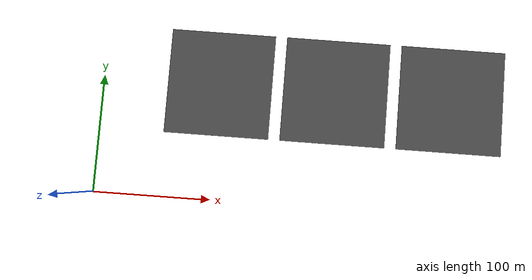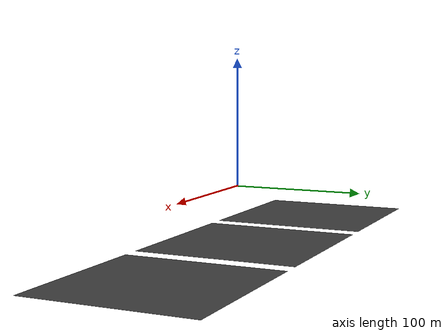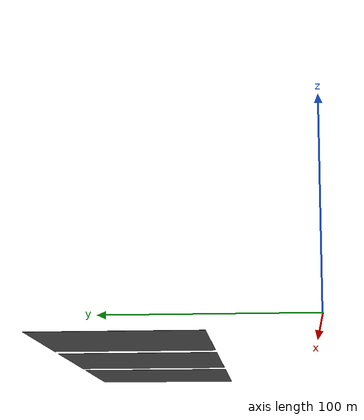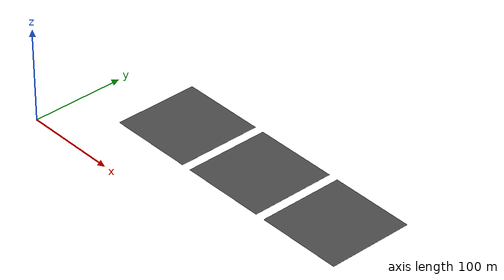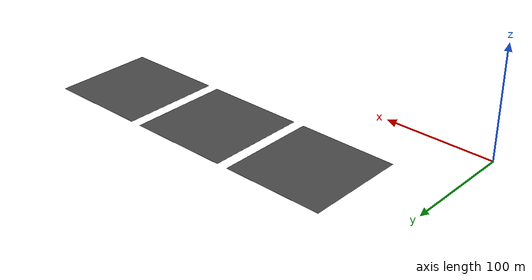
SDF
<?xml version="1.0" ?>

<sdf version="1.5">

  <model name='asphalt_1'>
    <pose>100 100 0 0 0 0</pose>
    <static>true</static>
    <link name="link">
      <collision name="collision">
        <geometry>
          <box>
            <size>90 90 .1</size>
          </box>
        </geometry>
      </collision>
      <visual name="visual">
        <cast_shadows>false</cast_shadows>
        <geometry>
          <box>
            <size>90 90 .1</size>
          </box>
        </geometry>
        <material>
          <script>
            <uri>model://asphalt_plane/materials/scripts</uri>
            <uri>model://asphalt_plane/materials/textures</uri>
            <name>vrc/asphalt</name>
          </script>
        </material>
      </visual>
    </link>
  </model>

  <model name='asphalt_2'>
    <pose>200 100 0 0 0 0</pose>
    <static>true</static>
    <link name="link">
      <collision name="collision">
        <geometry>
          <box>
            <size>90 90 .1</size>
          </box>
        </geometry>
      </collision>
      <visual name="visual">
        <cast_shadows>false</cast_shadows>
        <geometry>
          <box>
            <size>90 90 .1</size>
          </box>
        </geometry>
        <material>
          <script>
            <uri>model://asphalt_plane/materials/scripts</uri>
            <uri>model://asphalt_plane/materials/textures</uri>
            <name>vrc/asphalt</name>
          </script>
        </material>
      </visual>
    </link>
  </model>

  <model name='asphalt_3'>
    <pose>300 100 0 0 0 0</pose>
    <static>true</static>
    <link name="link">
      <collision name="collision">
        <geometry>
          <box>
            <size>90 90 .1</size>
          </box>
        </geometry>
      </collision>
      <visual name="visual">
        <cast_shadows>false</cast_shadows>
        <geometry>
          <box>
            <size>90 90 .1</size>
          </box>
        </geometry>
        <material>
          <script>
            <uri>model://asphalt_plane/materials/scripts</uri>
            <uri>model://asphalt_plane/materials/textures</uri>
            <name>vrc/asphalt</name>
          </script>
        </material>
      </visual>
    </link>
  </model>

</sdf>
